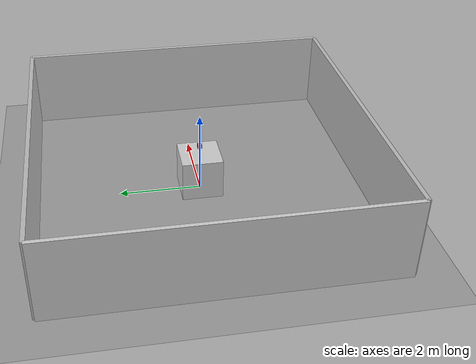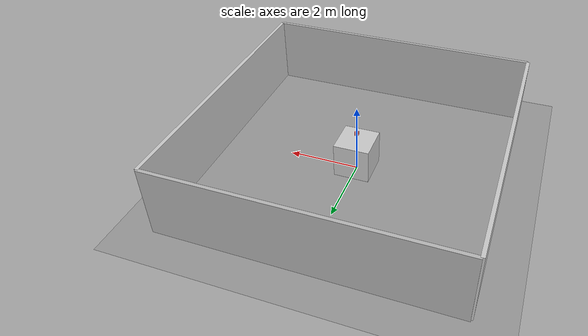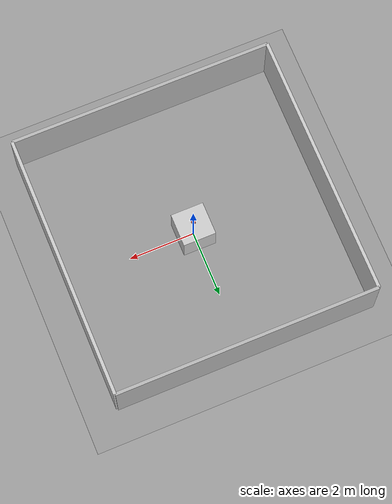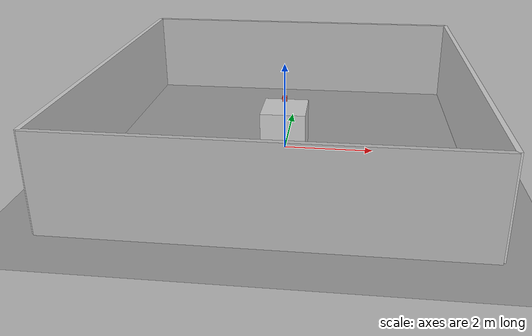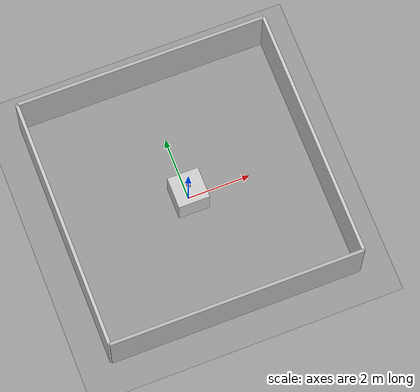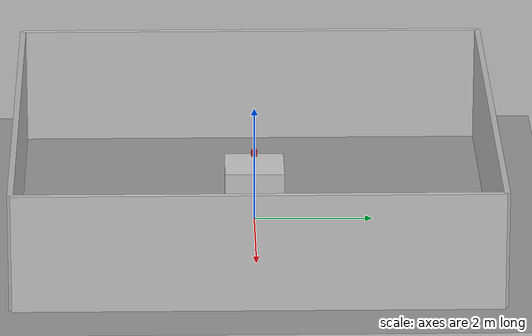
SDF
<?xml version="1.0" ?>
<sdf version="1.8">
  <world name="table_cube_world">
    <physics type="ode">
      <max_step_size>0.02</max_step_size>
      <real_time_factor>1.0</real_time_factor>
      <real_time_update_rate>50</real_time_update_rate>
    </physics>

    <plugin name="gz::sim::systems::Physics" filename="libgz-sim-physics-system.so"/>
    <plugin name="gz::sim::systems::UserCommands" filename="libgz-sim-user-commands-system.so"/>
    <plugin name="gz::sim::systems::SceneBroadcaster" filename="libgz-sim-scene-broadcaster-system.so"/>
    <plugin name="gz::sim::systems::Sensors" filename="libgz-sim-sensors-system.so">
      <render_engine>ogre2</render_engine>
    </plugin>

    <light type="directional" name="sun">
      <cast_shadows>true</cast_shadows>
      <pose>0 0 10 0 0 0</pose>
      <diffuse>0.8 0.8 0.8 1</diffuse>
      <specular>0.2 0.2 0.2 1</specular>
      <direction>-0.5 0.1 -0.9</direction>
    </light>

    <model name="ground_plane">
      <static>true</static>
      <link name="link">
        <collision name="collision">
          <geometry>
            <plane>
              <normal>0 0 1</normal>
            </plane>
          </geometry>
        </collision>
        <visual name="visual">
          <geometry>
            <plane>
              <normal>0 0 1</normal>
              <size>10 10</size>
            </plane>
          </geometry>
          <material>
            <ambient>0.6 0.6 0.6 1</ambient>
            <diffuse>0.6 0.6 0.6 1</diffuse>
          </material>
        </visual>
      </link>
    </model>

    <model name="table_0">
      <static>true</static>
      <pose>0 0 0.5 0 0 0</pose>
      <link name="link">
        <collision name="collision">
          <geometry>
            <box>
              <size>1.0 1.0 1.0</size>
            </box>
          </geometry>
        </collision>
        <visual name="visual">
          <geometry>
            <box>
              <size>1.0 1.0 1.0</size>
            </box>
          </geometry>
          <material>
            <ambient>0.8 0.8 0.8 1</ambient>
            <diffuse>0.8 0.8 0.8 1</diffuse>
          </material>
        </visual>
      </link>
    </model>

    <model name="cube_0">
      <pose>0 0 1.2 0 0 0</pose>
      <link name="link">
        <inertial>
          <mass>0.2</mass>
          <inertia>
            <ixx>0.000133</ixx>
            <iyy>0.000133</iyy>
            <izz>0.000133</izz>
            <ixy>0</ixy>
            <ixz>0</ixz>
            <iyz>0</iyz>
          </inertia>
        </inertial>
        <collision name="collision">
          <geometry>
            <box>
              <size>0.1 0.1 0.1</size>
            </box>
          </geometry>
        </collision>
        <visual name="visual">
          <geometry>
            <box>
              <size>0.1 0.1 0.1</size>
            </box>
          </geometry>
          <material>
            <ambient>0.8 0.2 0.2 1</ambient>
            <diffuse>0.8 0.2 0.2 1</diffuse>
          </material>
        </visual>
      </link>
    </model>

    <!-- WALLS aournd the table -->
    <model name="wall_0">
      <static>true</static>
      <pose>4.0 0 1.0 0 0 0</pose>
      <link name="link">
        <collision name="collision">
          <geometry>
            <box>
              <size>0.1 8 2</size>
            </box>
          </geometry>
        </collision>
        <visual name="visual">
          <geometry>
            <box>
              <size>0.1 8 2</size>
            </box>
          </geometry>
          <material>
            <ambient>0.8 0.8 0.8 1</ambient>
            <diffuse>0.8 0.8 0.8 1</diffuse>
          </material>
        </visual>
      </link>
    </model>
     <model name="wall_1">
      <static>true</static>
      <pose>-4.0 0 1.0 0 0 0</pose>
      <link name="link">
        <collision name="collision">
          <geometry>
            <box>
              <size>0.1 8 2</size>
            </box>
          </geometry>
        </collision>
        <visual name="visual">
          <geometry>
            <box>
              <size>0.1 8 2</size>
            </box>
          </geometry>
          <material>
            <ambient>0.8 0.8 0.8 1</ambient>
            <diffuse>0.8 0.8 0.8 1</diffuse>
          </material>
        </visual>
      </link>
    </model>
    <model name="wall_2">
      <static>true</static>
      <pose>0 4.0 1.0 0 0 1.5708</pose>
      <link name="link">
        <collision name="collision">
          <geometry>
            <box>
              <size>0.1 8 2</size>
            </box>
          </geometry>
        </collision>
        <visual name="visual">
          <geometry>
            <box>
              <size>0.1 8 2</size>
            </box>
          </geometry>
        </visual>
      </link>
    </model>
    <model name="wall_3">
      <static>true</static>
      <pose>0 -4.0 1.0 0 0 -1.5708</pose>
      <link name="link">
        <collision name="collision">
          <geometry>
            <box>
              <size>0.1 8 2</size>
            </box>
          </geometry>
        </collision>
        <visual name="visual">
          <geometry>
            <box>
              <size>0.1 8 2</size>
            </box>
          </geometry>
        </visual>
      </link>
    </model>
  </world>
</sdf>
